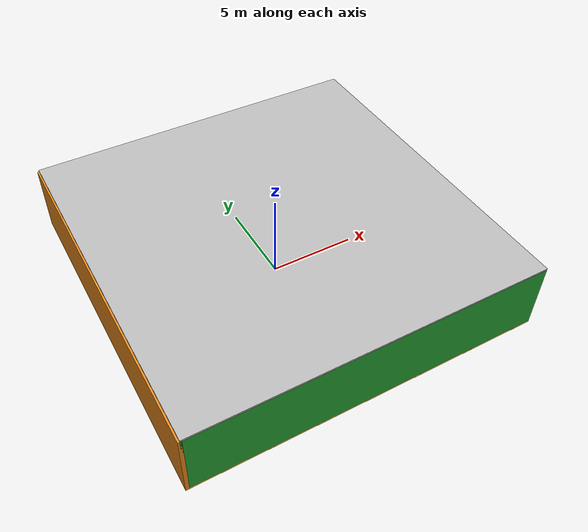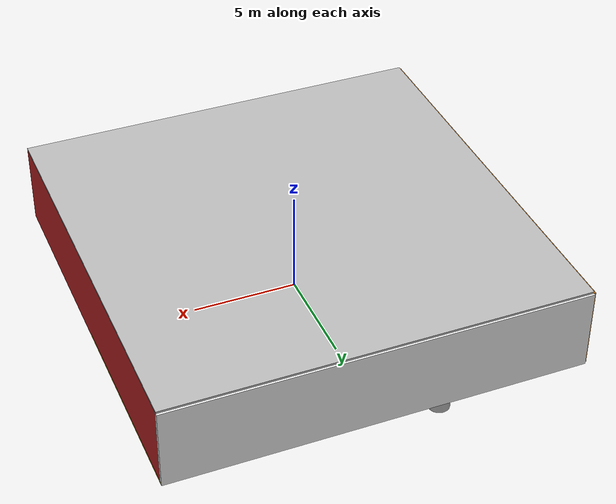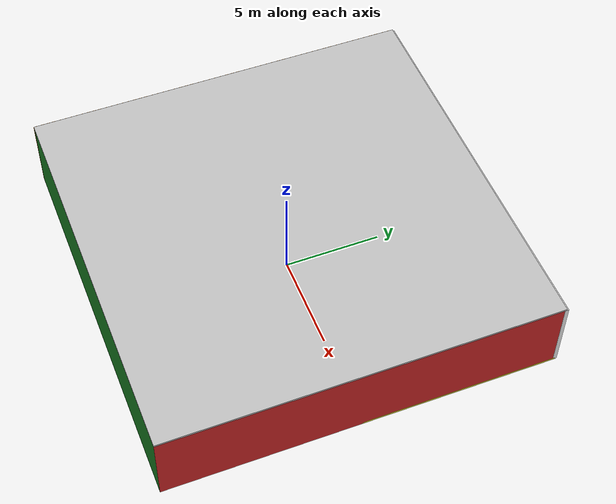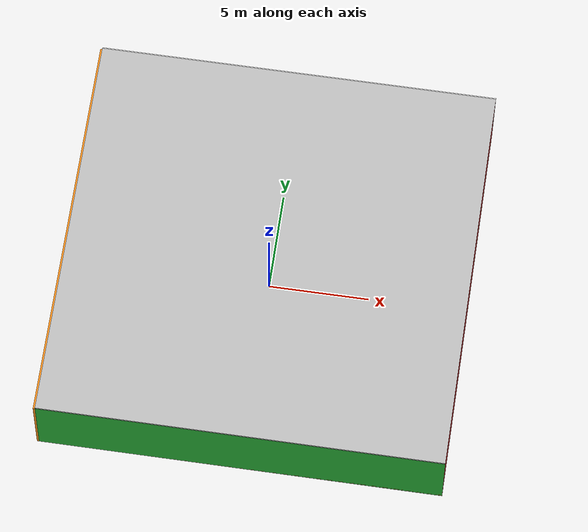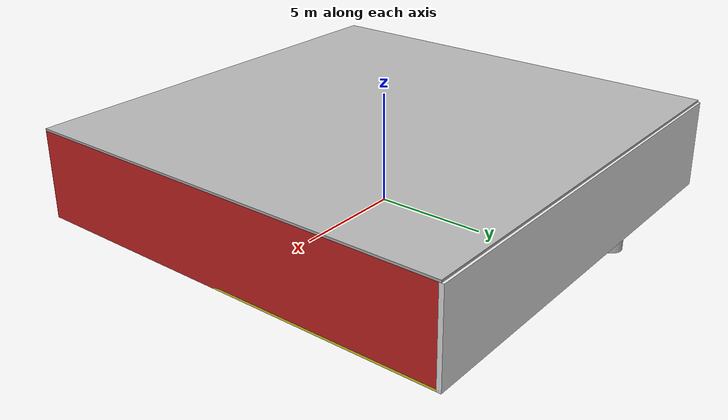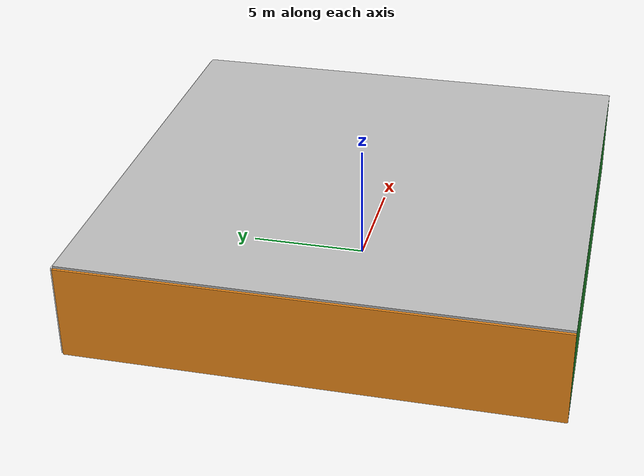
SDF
<sdf version="1.4">
 <world name="default">
  <physics type="ode">
   <max_step_size>0.001</max_step_size>
   <real_time_factor>1</real_time_factor>
   <real_time_update_rate>1000</real_time_update_rate>
   <gravity>0 0 -9.8</gravity>
  </physics>
  <scene><ambient>0.4 0.4 0.4 1</ambient><background>0.7 0.7 0.7 1</background><shadows>1</shadows></scene>
  <model name="Surrounding">
   <static>1</static>
   <link name="Ceiling">
    <collision name="Ceiling_Collision"><geometry><box><size>20 20 0.1</size></box></geometry></collision>
    <visual name="Ceiling_Visual">
     <geometry><box><size>20 20 0.1</size></box></geometry>
     <material>
      <script><uri>file://media/materials/scripts/gazebo.material</uri><name>Gazebo/LightOn</name></script>
     </material>
    </visual>
    <pose>0 0 4.05 0 0 0</pose>
   </link>
   <link name="Wall_South">
    <collision name="Wall_South_Collision">
     <geometry><box><size>20 0 4</size></box></geometry>
     <pose>0 0 2 0 -0 0</pose>
    </collision>
    <visual name="Wall_South_Visual">
     <pose>0 0 2 0 -0 0</pose>
     <geometry><box><size>20 0 4</size></box></geometry>
     <material>
      <script><uri>file://media/materials/scripts/gazebo.material</uri><name>Gazebo/GreenGlow</name></script>
     </material>
    </visual>
    <velocity_decay><linear>0</linear><angular>0</angular></velocity_decay>
    <pose>0 -10 0 0 -0 0</pose>
   </link>
   <link name="Wall_East">
    <collision name="Wall_21_Collision">
     <geometry><box><size>20 0 4</size></box></geometry>
     <pose>0 0 2 0 -0 0</pose>
    </collision>
    <visual name="Wall_21_Visual">
     <pose>0 0 2 0 -0 0</pose>
     <geometry><box><size>20 0 4</size></box></geometry>
     <material>
      <script><uri>file://media/materials/scripts/gazebo.material</uri><name>Gazebo/Red</name></script>
     </material>
    </visual>
    <velocity_decay><linear>0</linear><angular>0</angular></velocity_decay>
    <pose>10 0 0 0 -0 1.5708</pose>
   </link>
   <link name="Wall_North">
    <collision name="Wall_22_Collision">
     <geometry><box><size>20 0.2 4</size></box></geometry>
     <pose>0 0 2 0 -0 0</pose>
    </collision>
    <visual name="Wall_22_Visual">
     <pose>0 0 2 0 -0 0</pose>
     <geometry><box><size>20 0.2 4</size></box></geometry>
     <material>
      <script><uri>file://media/materials/scripts/gazebo.material</uri><name>Gazebo/White</name></script>
     </material>
    </visual>
    <velocity_decay><linear>0</linear><angular>0</angular></velocity_decay>
    <pose>0 10 0 0 -0 0</pose>
   </link>
   <link name="Wall_West">
    <collision name="Wall_23_Collision">
     <geometry><box><size>20 0.2 4</size></box></geometry>
     <pose>0 0 2 0 -0 0</pose>
    </collision>
    <visual name="Wall_23_Visual">
     <pose>0 0 2 0 -0 0</pose>
     <geometry><box><size>20 0.2 4</size></box></geometry>
     <material>
      <script><uri>file://media/materials/scripts/gazebo.material</uri><name>Gazebo/Orange</name></script>
     </material>
    </visual>
    <velocity_decay><linear>0</linear><angular>0</angular></velocity_decay>
    <pose>-10 0 0 0 0 -1.5708</pose>
   </link>
   <link name="Ground_link">
    <collision name="collision">
     <pose>0 0 .05 0 -0 0</pose>
     <geometry><box><size>20 20 0.1</size></box></geometry>
    </collision>
    <visual name="visual">
     <pose>0 0 .05 0 -0 0</pose>
     <geometry><box><size>20 20 0.1</size></box></geometry>
     <material>
      <script><uri>file://media/materials/scripts/gazebo.material</uri><name>Gazebo/YellowGlow</name></script>
     </material>
    </visual>
   </link>
   <static>1</static>
  </model>
  <spherical_coordinates>
   <surface_model>EARTH_WGS84</surface_model>
   <latitude_deg>0</latitude_deg>
   <longitude_deg>0</longitude_deg>
   <elevation>0</elevation>
   <heading_deg>0</heading_deg>
  </spherical_coordinates>
  <light name="lightball_0" type="diffuse">
   <diffuse>0.8 0.8 0.8 1</diffuse>
   <specular>0.2 0.2 0.2 1</specular>
   <attenuation>
    <range>100</range>
    <constant>0.7</constant>
    <linear>0.01</linear>
    <quadratic>0.001</quadratic>
   </attenuation>
   <direction>-0.5 0.1 -0.9</direction>
   <pose>5.58853910002 -4.8551745022 0.522400265964 0 0 0</pose>
  </light>
  <light name="lightball_1" type="diffuse">
   <diffuse>0.8 0.8 0.8 1</diffuse>
   <specular>0.2 0.2 0.2 1</specular>
   <attenuation>
    <range>100</range>
    <constant>0.7</constant>
    <linear>0.01</linear>
    <quadratic>0.001</quadratic>
   </attenuation>
   <direction>-0.5 0.1 -0.9</direction>
   <pose>-3.92178033018 5.33622734527 0.599562810845 0 0 0</pose>
  </light>
  <include>
   <uri>model://robocup_3Dsim_goal</uri>
   <pose>-7.99590975359 -6.96706247498 0 0 0 2.07596308079</pose>
  </include>
  <include><uri>model://cabinet</uri><pose>-7.99158875742 4.93437160726 0 0 0 1.6354349221</pose></include>
  <include>
   <uri>model://textured_shapes</uri>
   <pose>-4.92257784296 -2.58603508855 0 0 0 1.8414382527</pose>
  </include>
  <include>
   <uri>model://construction_cone</uri>
   <pose>-1.89171999491 0.563279478425 0 0 0 0.163007194198</pose>
  </include>
  <include>
   <uri>model://textured_shapes</uri>
   <pose>-2.38259930502 8.20678450456 0 0 0 0.404596930278</pose>
  </include>
  <include><uri>model://cabinet</uri><pose>2.18083148125 -5.35762113892 0 0 0 1.81288611373</pose></include>
  <include>
   <uri>model://textured_shapes</uri>
   <pose>1.47636986444 2.17208633597 0 0 0 1.36798392212</pose>
  </include>
  <include>
   <uri>model://construction_cone</uri>
   <pose>4.36281430455 -8.20176563029 0 0 0 2.36976379386</pose>
  </include>
  <include><uri>model://table</uri><pose>4.05955742396 5.08834362122 0 0 0 1.7580923625</pose></include>
  <include>
   <uri>model://robocup_3Dsim_goal</uri>
   <pose>4.68412596174 6.56477210829 0 0 0 0.294968715751</pose>
  </include>
  <include>
   <uri>model://construction_cone</uri>
   <pose>6.78671500002 -3.52112326278 0 0 0 1.07635641184</pose>
  </include>
 </world>
</sdf>

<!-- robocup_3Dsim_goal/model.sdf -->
<sdf version="1.5">
  <model name="robocup_3d_goal">
    <static>true</static>
    <link name="left_post">
      <pose>0 1.05 0.45 0 0 0</pose>
      <collision name="collision">
        <geometry>
          <cylinder>
            <radius>0.05</radius>
            <length>0.9</length>
          </cylinder>
        </geometry>
      </collision>
      <visual name="visual">
        <geometry>
          <cylinder>
            <radius>0.05</radius>
            <length>0.9</length>
          </cylinder>
        </geometry>
        <material>
          <script>
            <uri>file://media/materials/scripts/gazebo.material</uri>
            <name>Gazebo/ZincYellow</name>
          </script>
        </material>
      </visual>
    </link>
    <link name="left_support_horiz_lower">
      <pose>0.30 1.05 0.01 0 0 0</pose>
      <collision name="collision">
        <geometry>
          <box>
            <size>0.50 0.02 0.02</size>
          </box>
        </geometry>
      </collision>
      <visual name="visual">
        <geometry>
          <box>
            <size>0.50 0.02 0.02</size>
          </box>
        </geometry>
        <material>
          <script>
            <uri>file://media/materials/scripts/gazebo.material</uri>
            <name>Gazebo/White</name>
          </script>
        </material>
      </visual>
    </link>
    <link name="left_support_horiz_upper">
      <pose>0.30 1.05 0.79 0 0 0</pose>
      <collision name="collision">
        <geometry>
          <box>
            <size>0.50 0.02 0.02</size>
          </box>
        </geometry>
      </collision>
      <visual name="visual">
        <geometry>
          <box>
            <size>0.50 0.02 0.02</size>
          </box>
        </geometry>
        <material>
          <script>
            <uri>file://media/materials/scripts/gazebo.material</uri>
            <name>Gazebo/White</name>
          </script>
        </material>
      </visual>
    </link>
    <link name="left_support_vertical">
      <pose>0.56 1.05 0.4 0 1.5708 0</pose>
      <collision name="collision">
        <geometry>
          <box>
            <size>0.80 0.02 0.02</size>
          </box>
        </geometry>
      </collision>
      <visual name="visual">
        <geometry>
          <box>
            <size>0.80 0.02 0.02</size>
          </box>
        </geometry>
        <material>
          <script>
            <uri>file://media/materials/scripts/gazebo.material</uri>
            <name>Gazebo/White</name>
          </script>
        </material>
      </visual>
    </link>
    <link name="right_support_horiz_lower">
      <pose>0.30 -1.05 0.01 0 0 0</pose>
      <collision name="collision">
        <geometry>
          <box>
            <size>0.50 0.02 0.02</size>
          </box>
        </geometry>
      </collision>
      <visual name="visual">
        <geometry>
          <box>
            <size>0.50 0.02 0.02</size>
          </box>
        </geometry>
        <material>
          <script>
            <uri>file://media/materials/scripts/gazebo.material</uri>
            <name>Gazebo/White</name>
          </script>
        </material>
      </visual>
    </link>
    <link name="right_support_horiz_upper">
      <pose>0.30 -1.05 0.79 0 0 0</pose>
      <collision name="collision">
        <geometry>
          <box>
            <size>0.50 0.02 0.02</size>
          </box>
        </geometry>
      </collision>
      <visual name="visual">
        <geometry>
          <box>
            <size>0.50 0.02 0.02</size>
          </box>
        </geometry>
        <material>
          <script>
            <uri>file://media/materials/scripts/gazebo.material</uri>
            <name>Gazebo/White</name>
          </script>
        </material>
      </visual>
    </link>
    <link name="right_support_vertical">
      <pose>0.56 -1.05 0.4 0 1.5708 0</pose>
      <collision name="collision">
        <geometry>
          <box>
            <size>0.80 0.02 0.02</size>
          </box>
        </geometry>
      </collision>
      <visual name="visual">
        <geometry>
          <box>
            <size>0.80 0.02 0.02</size>
          </box>
        </geometry>
        <material>
          <script>
            <uri>file://media/materials/scripts/gazebo.material</uri>
            <name>Gazebo/White</name>
          </script>
        </material>
      </visual>
    </link>
    <link name="center_support_horiz_lower">
      <pose>0.56 0 0.01 0 1.5708 0</pose>
      <collision name="collision">
        <geometry>
          <box>
            <size>0.02 2.08 0.02</size>
          </box>
        </geometry>
      </collision>
      <visual name="visual">
        <geometry>
          <box>
            <size>0.02 2.08 0.02</size>
          </box>
        </geometry>
        <material>
          <script>
            <uri>file://media/materials/scripts/gazebo.material</uri>
            <name>Gazebo/White</name>
          </script>
        </material>
      </visual>
    </link>
    <link name="center_support_horiz_upper">
      <pose>0.56 0 0.79 0 1.5708 0</pose>
      <collision name="collision">
        <geometry>
          <box>
            <size>0.02 2.08 0.02</size>
          </box>
        </geometry>
      </collision>
      <visual name="visual">
        <geometry>
          <box>
            <size>0.02 2.08 0.02</size>
          </box>
        </geometry>
        <material>
          <script>
            <uri>file://media/materials/scripts/gazebo.material</uri>
            <name>Gazebo/White</name>
          </script>
        </material>
      </visual>
    </link>
    <link name="right_post">
      <pose>0 -1.05 0.45 0 0 0</pose>
      <collision name="collision">
        <geometry>
          <cylinder>
            <radius>0.05</radius>
            <length>0.9</length>
          </cylinder>
        </geometry>
      </collision>
      <visual name="visual">
        <geometry>
          <cylinder>
            <radius>0.05</radius>
            <length>0.9</length>
          </cylinder>
        </geometry>
        <material>
          <script>
            <uri>file://media/materials/scripts/gazebo.material</uri>
            <name>Gazebo/ZincYellow</name>
          </script>
        </material>
      </visual>
    </link>
    <link name="crossbar">
      <pose>0 0 0.85 1.57 1.57 0</pose>
      <collision name="collision">
        <geometry>
          <cylinder>
            <radius>0.05</radius>
            <length>2.0</length>
          </cylinder>
        </geometry>
      </collision>
      <visual name="visual">
        <geometry>
          <cylinder>
            <radius>0.05</radius>
            <length>2.0</length>
          </cylinder>
        </geometry>
        <material>
          <script>
            <uri>file://media/materials/scripts/gazebo.material</uri>
            <name>Gazebo/ZincYellow</name>
          </script>
        </material>
      </visual>
    </link>
    <link name="center_net">
      <pose>0.56 0 0.40 0 0 0</pose>
      <collision name="collision">
        <geometry>
          <box>
            <size>0.01 2.1 0.80</size>
          </box>
        </geometry>
      </collision>
      <visual name="visual">
        <geometry>
          <box>
            <size>0.01 2.1 0.80</size>
          </box>
        </geometry>
        <material>
          <script>
            <uri>model://../model_source/models/robocup09_spl_field/materials/scripts/</uri>
            <uri>model://../model_source/models/robocup09_spl_field/materials/textures/</uri>
            <name>RoboCup/Net</name>
          </script>
        </material>
      </visual>
    </link>
    <link name="left_net">
      <pose>0.30 1.05 0.40 0 0 0</pose>
      <collision name="collision">
        <geometry>
          <box>
            <size>0.50 0.01 0.76</size>
          </box>
        </geometry>
      </collision>
      <visual name="visual">
        <geometry>
          <box>
            <size>0.50 0.01 0.76</size>
          </box>
        </geometry>
        <material>
          <script>
            <uri>model://../model_source/models/robocup09_spl_field/materials/scripts/</uri>
            <uri>model://../model_source/models/robocup09_spl_field/materials/textures/</uri>
            <name>RoboCup/Net</name>
          </script>
        </material>
      </visual>
    </link>
    <link name="right_net">
      <pose>0.30 -1.05 0.40 0 0 0</pose>
      <collision name="collision">
        <geometry>
          <box>
            <size>0.50 0.01 0.76</size>
          </box>
        </geometry>
      </collision>
      <visual name="visual">
        <geometry>
          <box>
            <size>0.50 0.01 0.76</size>
          </box>
        </geometry>
        <material>
          <script>
            <uri>model://../model_source/models/robocup09_spl_field/materials/scripts/</uri>
            <uri>model://../model_source/models/robocup09_spl_field/materials/textures/</uri>
            <name>RoboCup/Net</name>
          </script>
        </material>
      </visual>
    </link>
  </model>
</sdf>

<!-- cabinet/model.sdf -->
<sdf version="1.5">
  <model name="cabinet">
    <static>true</static>
    <link name="cabinet_bottom_plate">
      <inertial>
        <pose>0 0 -1 0 0 0</pose>
        <inertia>
          <ixx>2.050000</ixx>
          <ixy>0</ixy>
          <ixz>0</ixz>
          <iyy>2.050000</iyy>
          <iyz>0</iyz>
          <izz>2.050000</izz>
        </inertia>
        <mass>25.000000</mass>
      </inertial>
      <collision name="cabinet_bottom_plate_geom">
        <pose>0 0 0.010000 0 0 0</pose>
        <geometry>
          <box>
            <size>0.450000 0.450000 0.020000</size>
          </box>
        </geometry>
      </collision>
      <visual name="cabinet_bottom_plate_geom_visual">
        <pose>0 0 0.010000 0 0 0</pose>
        <geometry>
          <box>
            <size>0.450000 0.450000 0.020000</size>
          </box>
        </geometry>
        <material>
          <script>
            <uri>model://media/materials/scripts/gazebo.material</uri>
            <name>Gazebo/Wood</name>
          </script>
        </material>
      </visual>
      <collision name="cabinet_bottom_plate_geom_cabinet_back_plate">
        <pose>0.235000 0 0.510000 0 0 0</pose>
        <geometry>
          <box>
            <size>0.020000 0.450000 1.020000</size>
          </box>
        </geometry>
      </collision>
      <visual name="cabinet_bottom_plate_geom_cabinet_back_plate_visual">
        <pose>0.235000 0 0.510000 0 0 0</pose>
        <geometry>
          <box>
            <size>0.020000 0.450000 1.020000</size>
          </box>
        </geometry>
        <material>
          <script>
            <uri>model://media/materials/scripts/gazebo.material</uri>
            <name>Gazebo/Wood</name>
          </script>
        </material>
      </visual>
      <collision name="cabinet_bottom_plate_geom_cabinet_left_plate">
        <pose>0 0.235000 0.510000 0 0 0</pose>
        <geometry>
          <box>
            <size>0.450000 0.020000 1.020000</size>
          </box>
        </geometry>
      </collision>
      <visual name="cabinet_bottom_plate_geom_cabinet_left_plate_visual">
        <pose>0 0.235000 0.510000 0 0 0</pose>
        <geometry>
          <box>
            <size>0.450000 0.020000 1.020000</size>
          </box>
        </geometry>
        <material>
          <script>
            <uri>model://media/materials/scripts/gazebo.material</uri>
            <name>Gazebo/Wood</name>
          </script>
        </material>
      </visual>
      <collision name="cabinet_bottom_plate_geom_cabinet_middle_plate">
        <pose>0 0 0.510000 0 0 0</pose>
        <geometry>
          <box>
            <size>0.450000 0.450000 0.020000</size>
          </box>
        </geometry>
      </collision>
      <visual name="cabinet_bottom_plate_geom_cabinet_middle_plate_visual">
        <pose>0 0 0.510000 0 0 0</pose>
        <geometry>
          <box>
            <size>0.450000 0.450000 0.020000</size>
          </box>
        </geometry>
        <material>
          <script>
            <uri>model://media/materials/scripts/gazebo.material</uri>
            <name>Gazebo/Wood</name>
          </script>
        </material>
      </visual>
      <collision name="cabinet_bottom_plate_geom_cabinet_right_plate">
        <pose>0 -0.235000 0.510000 0 0 0</pose>
        <geometry>
          <box>
            <size>0.450000 0.020000 1.020000</size>
          </box>
        </geometry>
      </collision>
      <visual name="cabinet_bottom_plate_geom_cabinet_right_plate_visual">
        <pose>0 -0.235000 0.510000 0 0 0</pose>
        <geometry>
          <box>
            <size>0.450000 0.020000 1.020000</size>
          </box>
        </geometry>
        <material>
          <script>
            <uri>model://media/materials/scripts/gazebo.material</uri>
            <name>Gazebo/Wood</name>
          </script>
        </material>
      </visual>
      <collision name="cabinet_bottom_plate_geom_cabinet_top_plate">
        <pose>0 0 1.010000 0 0 0</pose>
        <geometry>
          <box>
            <size>0.450000 0.450000 0.020000</size>
          </box>
        </geometry>
      </collision>
      <visual name="cabinet_bottom_plate_geom_cabinet_top_plate_visual">
        <pose>0 0 1.010000 0 0 0</pose>
        <geometry>
          <box>
            <size>0.450000 0.450000 0.020000</size>
          </box>
        </geometry>
        <material>
          <script>
            <uri>model://media/materials/scripts/gazebo.material</uri>
            <name>Gazebo/Wood</name>
          </script>
        </material>
      </visual>
    </link>
  </model>
</sdf>

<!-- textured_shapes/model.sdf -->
<sdf version="1.6">
  <model name="textured_shapes">
    <pose>0 0 0.5 0 0 0</pose>
    <link name="box">
      <pose>0 -1.5 0 0 0 0</pose>
      <collision name="collision">
        <geometry>
          <box>
            <size>1 1 1</size>
          </box>
        </geometry>
      </collision>
      <visual name="visual">
        <geometry>
          <box>
            <size>1 1 1</size>
          </box>
        </geometry>
        <material>
          <script>
            <uri>model://../model_source/models/textured_shapes/materials/scripts</uri>
            <uri>model://../model_source/models/textured_shapes/materials/textures</uri>
            <name>TexturedShape/Squares</name>
          </script>
        </material>
      </visual>
    </link>
    <link name="sphere">
      <collision name="collision">
        <geometry>
          <sphere>
            <radius>0.5</radius>
          </sphere>
        </geometry>
      </collision>
      <visual name="visual">
        <geometry>
          <sphere>
            <radius>0.5</radius>
          </sphere>
        </geometry>
        <material>
          <script>
            <uri>model://../model_source/models/textured_shapes/materials/scripts</uri>
            <uri>model://../model_source/models/textured_shapes/materials/textures</uri>
            <name>TexturedShape/Squares</name>
          </script>
        </material>
      </visual>
    </link>
    <link name="cylinder">
      <pose>0 1.5 0 0 0 0</pose>
      <collision name="collision">
        <geometry>
          <cylinder>
            <radius>0.5</radius>
            <length>1</length>
          </cylinder>
        </geometry>
      </collision>
      <visual name="visual">
        <geometry>
          <cylinder>
            <radius>0.5</radius>
            <length>1</length>
          </cylinder>
        </geometry>
        <material>
          <script>
            <uri>model://../model_source/models/textured_shapes/materials/scripts</uri>
            <uri>model://../model_source/models/textured_shapes/materials/textures</uri>
            <name>TexturedShape/Squares</name>
          </script>
        </material>
      </visual>
    </link>
  </model>
</sdf>

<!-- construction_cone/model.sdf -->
<sdf version="1.5">
  <model name="Construction Cone">
    <link name="link">
      <collision name="collision">
        <geometry>
          <mesh>
            <scale>10 10 10</scale>
            <uri>file://isr-testbed/construction_cone/meshes/construction_cone.dae</uri>
          </mesh>
        </geometry>
      </collision>
      <visual name="visual">
        <geometry>
          <mesh>
            <scale>10 10 10</scale>
            <uri>file://isr-testbed/construction_cone/meshes/construction_cone.dae</uri>
          </mesh>
        </geometry>
      </visual>
    </link>
  </model>
</sdf>

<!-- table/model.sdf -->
<sdf version="1.5">
  <model name="table">
    <static>true</static>
    <link name="link">
      <collision name="surface">
        <pose>0 0 1.0 0 0 0</pose>
        <geometry>
          <box>
            <size>1.5 0.8 0.03</size>
          </box>
        </geometry>
        <surface>
          <friction>
            <ode>
              <mu>0.6</mu>
              <mu2>0.6</mu2>
            </ode>
          </friction>
        </surface>
      </collision>
      <visual name="visual1">
        <pose>0 0 1.0 0 0 0</pose>
        <geometry>
          <box>
            <size>1.5 0.8 0.03</size>
          </box>
        </geometry>
        <material>
          <script>
            <uri>model://media/materials/scripts/gazebo.material</uri>
            <name>Gazebo/Wood</name>
          </script>
        </material>
      </visual>
      <collision name="front_left_leg">
        <pose>0.68 0.38 0.5 0 0 0</pose>
        <geometry>
          <cylinder>
            <radius>0.02</radius>
            <length>1.0</length>
          </cylinder>
        </geometry>
      </collision>
      <visual name="front_left_leg">
        <pose>0.68 0.38 0.5 0 0 0</pose>
        <geometry>
          <cylinder>
            <radius>0.02</radius>
            <length>1.0</length>
          </cylinder>
        </geometry>
        <material>
          <script>
            <uri>model://media/materials/scripts/gazebo.material</uri>
            <name>Gazebo/Grey</name>
          </script>
        </material>
      </visual>
      <collision name="front_right_leg">
        <pose>0.68 -0.38 0.5 0 0 0</pose>
        <geometry>
          <cylinder>
            <radius>0.02</radius>
            <length>1.0</length>
          </cylinder>
        </geometry>
      </collision>
      <visual name="front_right_leg">
        <pose>0.68 -0.38 0.5 0 0 0</pose>
        <geometry>
          <cylinder>
            <radius>0.02</radius>
            <length>1.0</length>
          </cylinder>
        </geometry>
        <material>
          <script>
            <uri>model://media/materials/scripts/gazebo.material</uri>
            <name>Gazebo/Grey</name>
          </script>
        </material>
      </visual>
      <collision name="back_right_leg">
        <pose>-0.68 -0.38 0.5 0 0 0</pose>
        <geometry>
          <cylinder>
            <radius>0.02</radius>
            <length>1.0</length>
          </cylinder>
        </geometry>
      </collision>
      <visual name="back_right_leg">
        <pose>-0.68 -0.38 0.5 0 0 0</pose>
        <geometry>
          <cylinder>
            <radius>0.02</radius>
            <length>1.0</length>
          </cylinder>
        </geometry>
        <material>
          <script>
            <uri>model://media/materials/scripts/gazebo.material</uri>
            <name>Gazebo/Grey</name>
          </script>
        </material>
      </visual>
      <collision name="back_left_leg">
        <pose>-0.68 0.38 0.5 0 0 0</pose>
        <geometry>
          <cylinder>
            <radius>0.02</radius>
            <length>1.0</length>
          </cylinder>
        </geometry>
      </collision>
      <visual name="back_left_leg">
        <pose>-0.68 0.38 0.5 0 0 0</pose>
        <geometry>
          <cylinder>
            <radius>0.02</radius>
            <length>1.0</length>
          </cylinder>
        </geometry>
        <material>
          <script>
            <uri>model://media/materials/scripts/gazebo.material</uri>
            <name>Gazebo/Grey</name>
          </script>
        </material>
      </visual>
    </link>
  </model>
</sdf>
